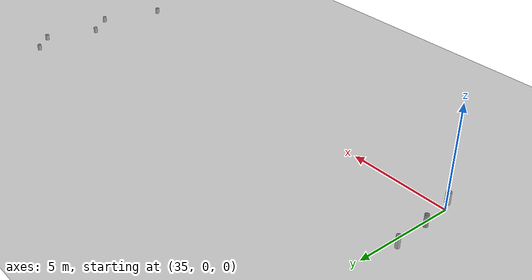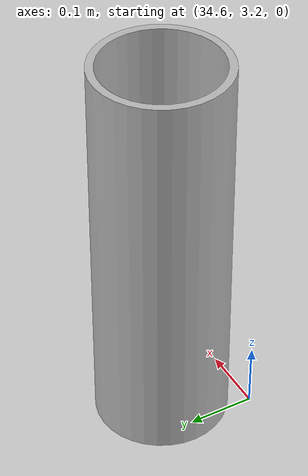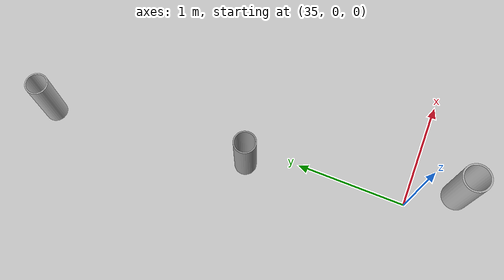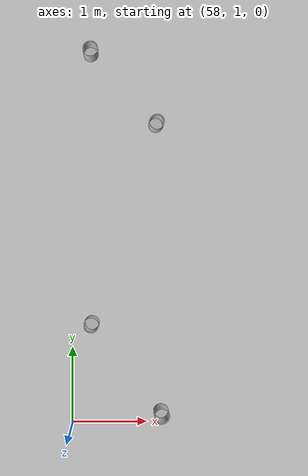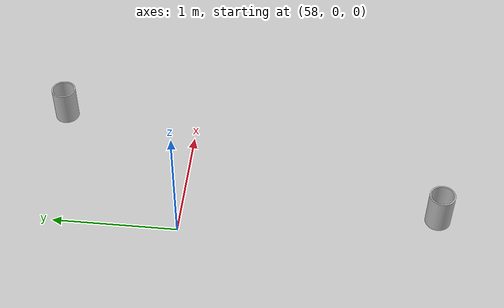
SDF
<sdf version="1.7">
 <world name="default">
  <physics type="ode">
   <ode>
    <solver>
     <type>quick</type>
     <iters>100</iters>
     <sor>1</sor>
     <use_dynamic_moi_rescaling>0</use_dynamic_moi_rescaling>
    </solver>
    <constraints>
     <cfm>0</cfm>
     <erp>0.2</erp>
     <contact_max_correcting_vel>0.1</contact_max_correcting_vel>
     <contact_surface_layer>0</contact_surface_layer>
    </constraints>
   </ode>
   <real_time_update_rate>0</real_time_update_rate>
   <max_step_size>0.0025</max_step_size>
   <real_time_factor>1</real_time_factor>
  </physics>
  <light name="sun" type="directional">
   <pose>0 0 10 0 -0 0</pose>
   <diffuse>0.8 0.8 0.8 1</diffuse>
   <specular>0.2 0.2 0.2 1</specular>
   <attenuation>
    <range>1000</range>
    <constant>0.9</constant>
    <linear>0.01</linear>
    <quadratic>0.001</quadratic>
   </attenuation>
   <direction>-0.5 0.1 -0.9</direction>
   <spot><inner_angle>0</inner_angle><outer_angle>0</outer_angle><falloff>0</falloff></spot>
  </light>
  <model name="ground_plane">
   <static>1</static>
   <link name="link">
    <collision name="collision">
     <geometry><plane><normal>0 0 1</normal><size>5000 5000</size></plane></geometry>
     <surface><friction><ode><mu>1</mu><mu2>1</mu2></ode></friction></surface>
    </collision>
    <visual name="runway">
     <pose>700 0 0.005 0 -0 0</pose>
     <cast_shadows>0</cast_shadows>
     <geometry><plane><normal>0 0 1</normal><size>1829 45</size></plane></geometry>
     <material>
      <script><uri>file://media/materials/scripts/gazebo.material</uri><name>Gazebo/Runway</name></script>
     </material>
    </visual>
    <visual name="grass">
     <pose>0 0 -0.1 0 -0 0</pose>
     <cast_shadows>0</cast_shadows>
     <geometry><plane><normal>0 0 1</normal><size>5000 5000</size></plane></geometry>
     <material>
      <script><uri>file://media/materials/scripts/gazebo.material</uri><name>Gazebo/Grass</name></script>
     </material>
    </visual>
   </link>
  </model>
  <gravity>0 0 -9.8</gravity>
  <magnetic_field>6e-06 2.3e-05 -4.2e-05</magnetic_field>
  <atmosphere type="adiabatic"/>
  <scene><ambient>0.4 0.4 0.4 1</ambient><background>0.7 0.7 0.7 1</background><shadows>1</shadows></scene>
  <spherical_coordinates>
   <surface_model>EARTH_WGS84</surface_model>
   <latitude_deg>0</latitude_deg>
   <longitude_deg>0</longitude_deg>
   <elevation>0</elevation>
   <heading_deg>0</heading_deg>
  </spherical_coordinates>
  <model name="scout1">
   <link name="link_3">
    <inertial>
     <mass>1</mass>
     <inertia>
      <ixx>0.166667</ixx>
      <ixy>0</ixy>
      <ixz>0</ixz>
      <iyy>0.166667</iyy>
      <iyz>0</iyz>
      <izz>0.166667</izz>
     </inertia>
    </inertial>
    <pose>0.416697 -0.080611 0 0 -0 0</pose>
    <visual name="visual">
     <geometry><mesh><uri>/home/kingyang/quadrotor/smz/scout1.dae</uri><scale>1 1 1</scale></mesh></geometry>
    </visual>
    <collision name="collision">
     <geometry><mesh><uri>/home/kingyang/quadrotor/smz/scout1.dae</uri><scale>1 1 1</scale></mesh></geometry>
     <surface>
      <friction>
       <ode><mu>1</mu><mu2>1</mu2><fdir1>0 0 0</fdir1><slip1>0</slip1><slip2>0</slip2></ode>
       <torsional>
        <coefficient>1</coefficient>
        <patch_radius>0</patch_radius>
        <surface_radius>0</surface_radius>
        <use_patch_radius>1</use_patch_radius>
        <ode><slip>0</slip></ode>
       </torsional>
      </friction>
      <bounce><restitution_coefficient>0</restitution_coefficient><threshold>1e+06</threshold></bounce>
      <contact>
       <collide_without_contact>0</collide_without_contact>
       <collide_without_contact_bitmask>1</collide_without_contact_bitmask>
       <collide_bitmask>1</collide_bitmask>
       <ode>
        <soft_cfm>0</soft_cfm>
        <soft_erp>0.2</soft_erp>
        <kp>1e+13</kp>
        <kd>1</kd>
        <max_vel>0.01</max_vel>
        <min_depth>0</min_depth>
       </ode>
       <bullet>
        <split_impulse>1</split_impulse>
        <split_impulse_penetration_threshold>-0.01</split_impulse_penetration_threshold>
        <soft_cfm>0</soft_cfm>
        <soft_erp>0.2</soft_erp>
        <kp>1e+13</kp>
        <kd>1</kd>
       </bullet>
      </contact>
     </surface>
    </collision>
   </link>
   <static>0</static>
   <pose>58.6998 5.07036 0.149998 1.2e-05 -5e-06 0.002437</pose>
  </model>
  <model name="scout6">
   <link name="link_8">
    <inertial>
     <mass>1</mass>
     <inertia>
      <ixx>0.166667</ixx>
      <ixy>0</ixy>
      <ixz>0</ixz>
      <iyy>0.166667</iyy>
      <iyz>0</iyz>
      <izz>0.166667</izz>
     </inertia>
    </inertial>
    <pose>13.9441 4.12819 0 0 -0 0</pose>
    <visual name="visual">
     <geometry><mesh><uri>/home/kingyang/quadrotor/smz/scout6.dae</uri><scale>1 1 1</scale></mesh></geometry>
    </visual>
    <collision name="collision">
     <geometry><mesh><uri>/home/kingyang/quadrotor/smz/scout6.dae</uri><scale>1 1 1</scale></mesh></geometry>
     <surface>
      <friction>
       <ode><mu>1</mu><mu2>1</mu2><fdir1>0 0 0</fdir1><slip1>0</slip1><slip2>0</slip2></ode>
       <torsional>
        <coefficient>1</coefficient>
        <patch_radius>0</patch_radius>
        <surface_radius>0</surface_radius>
        <use_patch_radius>1</use_patch_radius>
        <ode><slip>0</slip></ode>
       </torsional>
      </friction>
      <bounce><restitution_coefficient>0</restitution_coefficient><threshold>1e+06</threshold></bounce>
      <contact>
       <collide_without_contact>0</collide_without_contact>
       <collide_without_contact_bitmask>1</collide_without_contact_bitmask>
       <collide_bitmask>1</collide_bitmask>
       <ode>
        <soft_cfm>0</soft_cfm>
        <soft_erp>0.2</soft_erp>
        <kp>1e+13</kp>
        <kd>1</kd>
        <max_vel>0.01</max_vel>
        <min_depth>0</min_depth>
       </ode>
       <bullet>
        <split_impulse>1</split_impulse>
        <split_impulse_penetration_threshold>-0.01</split_impulse_penetration_threshold>
        <soft_cfm>0</soft_cfm>
        <soft_erp>0.2</soft_erp>
        <kp>1e+13</kp>
        <kd>1</kd>
       </bullet>
      </contact>
     </surface>
    </collision>
   </link>
   <static>0</static>
   <pose>45.2604 -3.04083 0.14988 1.2e-05 -5e-06 0.004096</pose>
  </model>
  <model name="scout7">
   <link name="link_9">
    <inertial>
     <mass>1</mass>
     <inertia>
      <ixx>0.166667</ixx>
      <ixy>0</ixy>
      <ixz>0</ixz>
      <iyy>0.166667</iyy>
      <iyz>0</iyz>
      <izz>0.166667</izz>
     </inertia>
    </inertial>
    <pose>0.493928 -0.730847 0 0 -0 0</pose>
    <visual name="visual">
     <geometry><mesh><uri>/home/kingyang/quadrotor/smz/scout7.dae</uri><scale>1 1 1</scale></mesh></geometry>
    </visual>
    <collision name="collision">
     <geometry><mesh><uri>/home/kingyang/quadrotor/smz/scout7.dae</uri><scale>1 1 1</scale></mesh></geometry>
     <surface>
      <friction>
       <ode><mu>1</mu><mu2>1</mu2><fdir1>0 0 0</fdir1><slip1>0</slip1><slip2>0</slip2></ode>
       <torsional>
        <coefficient>1</coefficient>
        <patch_radius>0</patch_radius>
        <surface_radius>0</surface_radius>
        <use_patch_radius>1</use_patch_radius>
        <ode><slip>0</slip></ode>
       </torsional>
      </friction>
      <bounce><restitution_coefficient>0</restitution_coefficient><threshold>1e+06</threshold></bounce>
      <contact>
       <collide_without_contact>0</collide_without_contact>
       <collide_without_contact_bitmask>1</collide_without_contact_bitmask>
       <collide_bitmask>1</collide_bitmask>
       <ode>
        <soft_cfm>0</soft_cfm>
        <soft_erp>0.2</soft_erp>
        <kp>1e+13</kp>
        <kd>1</kd>
        <max_vel>0.01</max_vel>
        <min_depth>0</min_depth>
       </ode>
       <bullet>
        <split_impulse>1</split_impulse>
        <split_impulse_penetration_threshold>-0.01</split_impulse_penetration_threshold>
        <soft_cfm>0</soft_cfm>
        <soft_erp>0.2</soft_erp>
        <kp>1e+13</kp>
        <kd>1</kd>
       </bullet>
      </contact>
     </surface>
    </collision>
   </link>
   <static>0</static>
   <pose>57.8046 -1.29639 0.150006 1.2e-05 -5e-06 0.002761</pose>
  </model>
  <model name="scout8">
   <link name="link_10">
    <inertial>
     <mass>1</mass>
     <inertia>
      <ixx>0.166667</ixx>
      <ixy>0</ixy>
      <ixz>0</ixz>
      <iyy>0.166667</iyy>
      <iyz>0</iyz>
      <izz>0.166667</izz>
     </inertia>
    </inertial>
    <pose>13.9316 4.12054 0 0 -0 0</pose>
    <visual name="visual">
     <geometry><mesh><uri>/home/kingyang/quadrotor/smz/scout8.dae</uri><scale>1 1 1</scale></mesh></geometry>
    </visual>
    <collision name="collision">
     <geometry><mesh><uri>/home/kingyang/quadrotor/smz/scout8.dae</uri><scale>1 1 1</scale></mesh></geometry>
     <surface>
      <friction>
       <ode><mu>1</mu><mu2>1</mu2><fdir1>0 0 0</fdir1><slip1>0</slip1><slip2>0</slip2></ode>
       <torsional>
        <coefficient>1</coefficient>
        <patch_radius>0</patch_radius>
        <surface_radius>0</surface_radius>
        <use_patch_radius>1</use_patch_radius>
        <ode><slip>0</slip></ode>
       </torsional>
      </friction>
      <bounce><restitution_coefficient>0</restitution_coefficient><threshold>1e+06</threshold></bounce>
      <contact>
       <collide_without_contact>0</collide_without_contact>
       <collide_without_contact_bitmask>1</collide_without_contact_bitmask>
       <collide_bitmask>1</collide_bitmask>
       <ode>
        <soft_cfm>0</soft_cfm>
        <soft_erp>0.2</soft_erp>
        <kp>1e+13</kp>
        <kd>1</kd>
        <max_vel>0.01</max_vel>
        <min_depth>0</min_depth>
       </ode>
       <bullet>
        <split_impulse>1</split_impulse>
        <split_impulse_penetration_threshold>-0.01</split_impulse_penetration_threshold>
        <soft_cfm>0</soft_cfm>
        <soft_erp>0.2</soft_erp>
        <kp>1e+13</kp>
        <kd>1</kd>
       </bullet>
      </contact>
     </surface>
    </collision>
   </link>
   <static>0</static>
   <pose>44.3292 1.76701 0.149871 1.3e-05 -5e-06 0.004211</pose>
  </model>
  <model name="scout9">
   <link name="link_11">
    <inertial>
     <mass>1</mass>
     <inertia>
      <ixx>0.166667</ixx>
      <ixy>0</ixy>
      <ixz>0</ixz>
      <iyy>0.166667</iyy>
      <iyz>0</iyz>
      <izz>0.166667</izz>
     </inertia>
    </inertial>
    <pose>0.459523 -0.808246 0 0 -0 0</pose>
    <visual name="visual">
     <geometry><mesh><uri>/home/kingyang/quadrotor/smz/scout9.dae</uri><scale>1 1 1</scale></mesh></geometry>
    </visual>
    <collision name="collision">
     <geometry><mesh><uri>/home/kingyang/quadrotor/smz/scout9.dae</uri><scale>1 1 1</scale></mesh></geometry>
     <surface>
      <friction>
       <ode><mu>1</mu><mu2>1</mu2><fdir1>0 0 0</fdir1><slip1>0</slip1><slip2>0</slip2></ode>
       <torsional>
        <coefficient>1</coefficient>
        <patch_radius>0</patch_radius>
        <surface_radius>0</surface_radius>
        <use_patch_radius>1</use_patch_radius>
        <ode><slip>0</slip></ode>
       </torsional>
      </friction>
      <bounce><restitution_coefficient>0</restitution_coefficient><threshold>1e+06</threshold></bounce>
      <contact>
       <collide_without_contact>0</collide_without_contact>
       <collide_without_contact_bitmask>1</collide_without_contact_bitmask>
       <collide_bitmask>1</collide_bitmask>
       <ode>
        <soft_cfm>0</soft_cfm>
        <soft_erp>0.2</soft_erp>
        <kp>1e+13</kp>
        <kd>1</kd>
        <max_vel>0.01</max_vel>
        <min_depth>0</min_depth>
       </ode>
       <bullet>
        <split_impulse>1</split_impulse>
        <split_impulse_penetration_threshold>-0.01</split_impulse_penetration_threshold>
        <soft_cfm>0</soft_cfm>
        <soft_erp>0.2</soft_erp>
        <kp>1e+13</kp>
        <kd>1</kd>
       </bullet>
      </contact>
     </surface>
    </collision>
   </link>
   <static>0</static>
   <pose>57.801 3.13655 0.150007 1.2e-05 -5e-06 0.000569</pose>
  </model>
  <model name="hit15">
   <link name="link_1">
    <inertial>
     <mass>1</mass>
     <inertia>
      <ixx>0.166667</ixx>
      <ixy>0</ixy>
      <ixz>0</ixz>
      <iyy>0.166667</iyy>
      <iyz>0</iyz>
      <izz>0.166667</izz>
     </inertia>
    </inertial>
    <pose>14.3589 3.1753 0 0 -0 0</pose>
    <visual name="visual">
     <geometry><mesh><uri>/home/kingyang/quadrotor/smz/hit20.dae</uri><scale>1 1 1</scale></mesh></geometry>
     <material>
      <lighting>1</lighting>
      <script><uri>file://media/materials/scripts/gazebo.material</uri><name>Gazebo/Grey</name></script>
      <shader type="pixel"/>
     </material>
    </visual>
    <collision name="collision">
     <geometry><mesh><uri>/home/kingyang/quadrotor/smz/hit20.dae</uri><scale>1 1 1</scale></mesh></geometry>
     <surface>
      <friction>
       <ode><mu>1</mu><mu2>1</mu2><fdir1>0 0 0</fdir1><slip1>0</slip1><slip2>0</slip2></ode>
       <torsional>
        <coefficient>1</coefficient>
        <patch_radius>0</patch_radius>
        <surface_radius>0</surface_radius>
        <use_patch_radius>1</use_patch_radius>
        <ode><slip>0</slip></ode>
       </torsional>
      </friction>
      <bounce><restitution_coefficient>0</restitution_coefficient><threshold>1e+06</threshold></bounce>
      <contact>
       <collide_without_contact>0</collide_without_contact>
       <collide_without_contact_bitmask>1</collide_without_contact_bitmask>
       <collide_bitmask>1</collide_bitmask>
       <ode>
        <soft_cfm>0</soft_cfm>
        <soft_erp>0.2</soft_erp>
        <kp>1e+13</kp>
        <kd>1</kd>
        <max_vel>0.01</max_vel>
        <min_depth>0</min_depth>
       </ode>
       <bullet>
        <split_impulse>1</split_impulse>
        <split_impulse_penetration_threshold>-0.01</split_impulse_penetration_threshold>
        <soft_cfm>0</soft_cfm>
        <soft_erp>0.2</soft_erp>
        <kp>1e+13</kp>
        <kd>1</kd>
       </bullet>
      </contact>
     </surface>
    </collision>
   </link>
   <static>0</static>
   <pose>20.5362 -1.97548 0.300176 1.1e-05 1.4e-05 0.01815</pose>
  </model>
  <model name="hit20">
   <link name="link_1">
    <inertial>
     <mass>1</mass>
     <inertia>
      <ixx>0.166667</ixx>
      <ixy>0</ixy>
      <ixz>0</ixz>
      <iyy>0.166667</iyy>
      <iyz>0</iyz>
      <izz>0.166667</izz>
     </inertia>
    </inertial>
    <pose>0.117642 0.240307 0 0 -0 0</pose>
    <visual name="visual">
     <geometry><mesh><uri>/home/kingyang/quadrotor/smz/hit20.dae</uri><scale>1 1 1</scale></mesh></geometry>
    </visual>
    <collision name="collision">
     <geometry><mesh><uri>/home/kingyang/quadrotor/smz/hit20.dae</uri><scale>1 1 1</scale></mesh></geometry>
     <surface>
      <friction>
       <ode><mu>1</mu><mu2>1</mu2><fdir1>0 0 0</fdir1><slip1>0</slip1><slip2>0</slip2></ode>
       <torsional>
        <coefficient>1</coefficient>
        <patch_radius>0</patch_radius>
        <surface_radius>0</surface_radius>
        <use_patch_radius>1</use_patch_radius>
        <ode><slip>0</slip></ode>
       </torsional>
      </friction>
      <bounce><restitution_coefficient>0</restitution_coefficient><threshold>1e+06</threshold></bounce>
      <contact>
       <collide_without_contact>0</collide_without_contact>
       <collide_without_contact_bitmask>1</collide_without_contact_bitmask>
       <collide_bitmask>1</collide_bitmask>
       <ode>
        <soft_cfm>0</soft_cfm>
        <soft_erp>0.2</soft_erp>
        <kp>1e+13</kp>
        <kd>1</kd>
        <max_vel>0.01</max_vel>
        <min_depth>0</min_depth>
       </ode>
       <bullet>
        <split_impulse>1</split_impulse>
        <split_impulse_penetration_threshold>-0.01</split_impulse_penetration_threshold>
        <soft_cfm>0</soft_cfm>
        <soft_erp>0.2</soft_erp>
        <kp>1e+13</kp>
        <kd>1</kd>
       </bullet>
      </contact>
     </surface>
    </collision>
   </link>
   <static>0</static>
   <pose>34.5552 3.07189 0.299996 1e-05 -4e-06 0.019635</pose>
  </model>
  <model name="hit25">
   <link name="link_2">
    <inertial>
     <mass>1</mass>
     <inertia>
      <ixx>0.166667</ixx>
      <ixy>0</ixy>
      <ixz>0</ixz>
      <iyy>0.166667</iyy>
      <iyz>0</iyz>
      <izz>0.166667</izz>
     </inertia>
    </inertial>
    <pose>14.3589 3.1753 0 0 -0 0</pose>
    <visual name="visual">
     <geometry><mesh><uri>/home/kingyang/quadrotor/smz/hit25.dae</uri><scale>1 1 1</scale></mesh></geometry>
    </visual>
    <collision name="collision">
     <geometry><mesh><uri>/home/kingyang/quadrotor/smz/hit25.dae</uri><scale>1 1 1</scale></mesh></geometry>
     <surface>
      <friction>
       <ode><mu>1</mu><mu2>1</mu2><fdir1>0 0 0</fdir1><slip1>0</slip1><slip2>0</slip2></ode>
       <torsional>
        <coefficient>1</coefficient>
        <patch_radius>0</patch_radius>
        <surface_radius>0</surface_radius>
        <use_patch_radius>1</use_patch_radius>
        <ode><slip>0</slip></ode>
       </torsional>
      </friction>
      <bounce><restitution_coefficient>0</restitution_coefficient><threshold>1e+06</threshold></bounce>
      <contact>
       <collide_without_contact>0</collide_without_contact>
       <collide_without_contact_bitmask>1</collide_without_contact_bitmask>
       <collide_bitmask>1</collide_bitmask>
       <ode>
        <soft_cfm>0</soft_cfm>
        <soft_erp>0.2</soft_erp>
        <kp>1e+13</kp>
        <kd>1</kd>
        <max_vel>0.01</max_vel>
        <min_depth>0</min_depth>
       </ode>
       <bullet>
        <split_impulse>1</split_impulse>
        <split_impulse_penetration_threshold>-0.01</split_impulse_penetration_threshold>
        <soft_cfm>0</soft_cfm>
        <soft_erp>0.2</soft_erp>
        <kp>1e+13</kp>
        <kd>1</kd>
       </bullet>
      </contact>
     </surface>
    </collision>
   </link>
   <static>0</static>
   <pose>20.9323 -3.77575 0.299923 1e-05 -3e-06 0.013688</pose>
  </model>
 </world>
</sdf>
